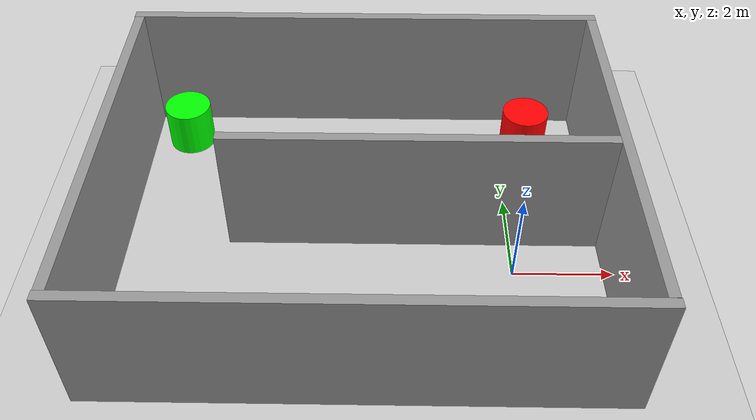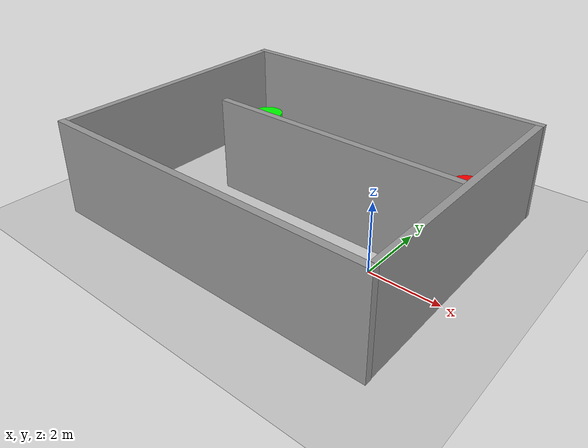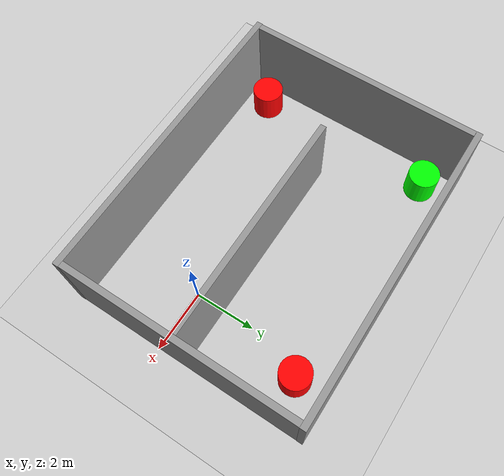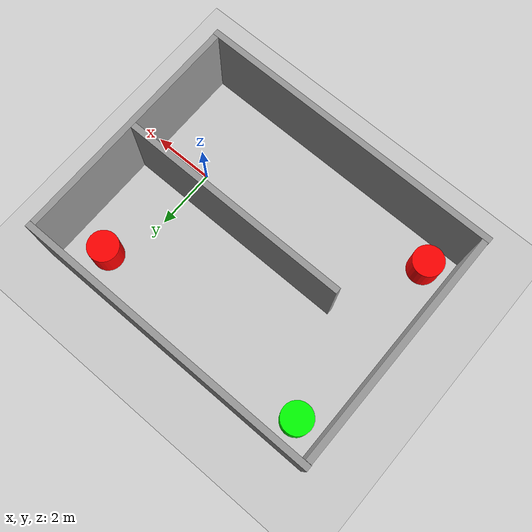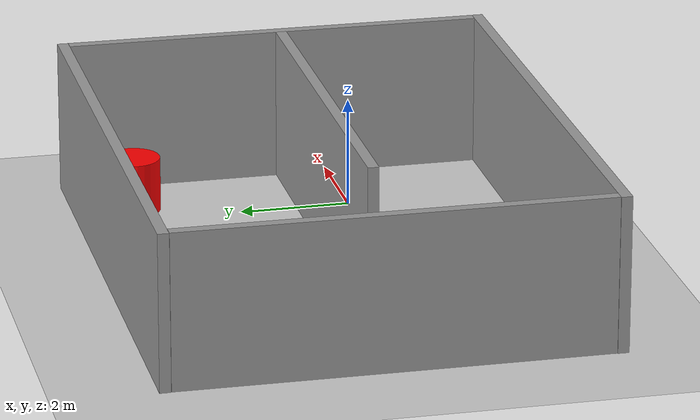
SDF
<sdf version="1.6">
 <world name="default">
  <light name="sun" type="directional">
   <pose>0 0 10 0 -0 0</pose>
   <diffuse>0.8 0.8 0.8 1</diffuse>
   <specular>0.2 0.2 0.2 1</specular>
   <attenuation>
    <range>1000</range>
    <constant>0.9</constant>
    <linear>0.01</linear>
    <quadratic>0.001</quadratic>
   </attenuation>
   <direction>-0.5 0.1 -0.9</direction>
  </light>
  <model name="ground_plane">
   <static>1</static>
   <link name="link">
    <collision name="collision">
     <geometry><plane><normal>0 0 1</normal><size>100 100</size></plane></geometry>
     <surface><friction><ode><mu>100</mu><mu2>50</mu2></ode></friction></surface>
    </collision>
    <visual name="visual">
     <cast_shadows>0</cast_shadows>
     <geometry><plane><normal>0 0 1</normal><size>100 100</size></plane></geometry>
     <material>
      <script><uri>file://media/materials/scripts/gazebo.material</uri><name>Gazebo/Grey</name></script>
     </material>
    </visual>
    <velocity_decay><linear>0</linear><angular>0</angular></velocity_decay>
   </link>
  </model>
  <physics name="default_physics" default="0" type="ode">
   <max_step_size>0.001</max_step_size>
   <real_time_factor>1</real_time_factor>
   <real_time_update_rate>1000</real_time_update_rate>
  </physics>
  <scene><ambient>0.4 0.4 0.4 1</ambient><background>0.7 0.7 0.7 1</background><shadows>1</shadows></scene>
  <spherical_coordinates>
   <surface_model>EARTH_WGS84</surface_model>
   <latitude_deg>0</latitude_deg>
   <longitude_deg>0</longitude_deg>
   <elevation>0</elevation>
   <heading_deg>0</heading_deg>
  </spherical_coordinates>
  <model name="grey_wall_5">
   <static>1</static>
   <link name="link">
    <pose>0 0 1.4 0 -0 0</pose>
    <collision name="collision"><geometry><box><size>7.5 0.2 2.8</size></box></geometry></collision>
    <visual name="visual">
     <cast_shadows>0</cast_shadows>
     <geometry><box><size>7.5 0.2 2.8</size></box></geometry>
     <material>
      <script>
       <uri>model://grey_wall/materials/scripts</uri>
       <uri>model://grey_wall/materials/textures</uri>
       <name>vrc/grey_wall</name>
      </script>
     </material>
    </visual>
    <velocity_decay><linear>0</linear><angular>0</angular></velocity_decay>
   </link>
   <pose>-1.96434 0.864638 0.00615 0 -0 0</pose>
  </model>
  <gravity>0 0 -9.8</gravity>
  <magnetic_field>6e-06 2.3e-05 -4.2e-05</magnetic_field>
  <atmosphere type="adiabatic"/>
  <audio><device>default</device></audio>
  <model name="unit_cylinder">
   <pose>-7.04937 -2.01223 0.499992 -3e-06 -4e-06 -0</pose>
   <link name="link">
    <inertial>
     <mass>1</mass>
     <inertia><ixx>0.145833</ixx><ixy>0</ixy><ixz>0</ixz><iyy>0.145833</iyy><iyz>0</iyz><izz>0.125</izz></inertia>
    </inertial>
    <collision name="collision">
     <geometry><cylinder><radius>0.5</radius><length>1</length></cylinder></geometry>
    </collision>
    <visual name="visual">
     <geometry><cylinder><radius>0.5</radius><length>1</length></cylinder></geometry>
     <material>
      <ambient>1 0 0 1</ambient>
      <diffuse>1 0 0 1</diffuse>
      <specular>0.2 0.2 0.2 0.2</specular>
      <emissive>0 0 0 1</emissive>
     </material>
    </visual>
   </link>
  </model>
  <model name="unit_cylinder_clone">
   <pose>-6.98337 3.99898 0.499993 -3e-06 -4e-06 -0</pose>
   <link name="link">
    <inertial>
     <mass>1</mass>
     <inertia><ixx>0.145833</ixx><ixy>0</ixy><ixz>0</ixz><iyy>0.145833</iyy><iyz>0</iyz><izz>0.125</izz></inertia>
    </inertial>
    <collision name="collision">
     <geometry><cylinder><radius>0.5</radius><length>1</length></cylinder></geometry>
    </collision>
    <visual name="visual">
     <geometry><cylinder><radius>0.5</radius><length>1</length></cylinder></geometry>
     <material>
      <ambient>0 1 0 1</ambient>
      <diffuse>0 1 0 1</diffuse>
      <specular>0.2 0.2 0.2 0.2</specular>
      <emissive>0 0 0 1</emissive>
     </material>
    </visual>
   </link>
  </model>
  <model name="unit_cylinder_clone_0">
   <pose>0.592604 3.88284 0.499997 3e-06 4e-06 -0</pose>
   <link name="link">
    <inertial>
     <mass>1</mass>
     <inertia><ixx>0.145833</ixx><ixy>0</ixy><ixz>0</ixz><iyy>0.145833</iyy><iyz>0</iyz><izz>0.125</izz></inertia>
    </inertial>
    <collision name="collision">
     <geometry><cylinder><radius>0.5</radius><length>1</length></cylinder></geometry>
    </collision>
    <visual name="visual">
     <geometry><cylinder><radius>0.5</radius><length>1</length></cylinder></geometry>
     <material>
      <ambient>1 0 0 1</ambient>
      <diffuse>1 0 0 1</diffuse>
      <specular>0.2 0.2 0.2 0.2</specular>
      <emissive>0 0 0 1</emissive>
     </material>
    </visual>
   </link>
  </model>
  <model name="grey_wall_0">
   <link name="link">
    <pose>0 0 1.4 0 -0 0</pose>
    <velocity_decay><linear>0</linear><angular>0</angular></velocity_decay>
    <inertial>
     <mass>1</mass>
     <inertia><ixx>1</ixx><ixy>0</ixy><ixz>0</ixz><iyy>1</iyy><iyz>0</iyz><izz>1</izz></inertia>
    </inertial>
    <visual name="visual">
     <cast_shadows>0</cast_shadows>
     <geometry><box><size>10 0.2 2.8</size></box></geometry>
     <material>
      <script>
       <uri>model://grey_wall/materials/scripts</uri>
       <uri>model://grey_wall/materials/textures</uri>
       <name>vrc/grey_wall</name>
      </script>
      <shader type="vertex"><normal_map>__default__</normal_map></shader>
      <ambient>1 1 1 1</ambient>
      <diffuse>1 1 1 1</diffuse>
      <specular>0 0 0 1</specular>
      <emissive>0 0 0 1</emissive>
     </material>
    </visual>
    <collision name="collision">
     <geometry><box><size>7.5 0.2 2.8</size></box></geometry>
     <surface>
      <friction>
       <ode><mu>1</mu><mu2>1</mu2><fdir1>0 0 0</fdir1><slip1>0</slip1><slip2>0</slip2></ode>
       <torsional>
        <coefficient>1</coefficient>
        <patch_radius>0</patch_radius>
        <surface_radius>0</surface_radius>
        <use_patch_radius>1</use_patch_radius>
        <ode><slip>0</slip></ode>
       </torsional>
      </friction>
      <bounce><restitution_coefficient>0</restitution_coefficient><threshold>1e+06</threshold></bounce>
      <contact>
       <collide_without_contact>0</collide_without_contact>
       <collide_without_contact_bitmask>1</collide_without_contact_bitmask>
       <collide_bitmask>1</collide_bitmask>
       <ode>
        <soft_cfm>0</soft_cfm>
        <soft_erp>0.2</soft_erp>
        <kp>1e+13</kp>
        <kd>1</kd>
        <max_vel>0.01</max_vel>
        <min_depth>0</min_depth>
       </ode>
       <bullet>
        <split_impulse>1</split_impulse>
        <split_impulse_penetration_threshold>-0.01</split_impulse_penetration_threshold>
        <soft_cfm>0</soft_cfm>
        <soft_erp>0.2</soft_erp>
        <kp>1e+13</kp>
        <kd>1</kd>
       </bullet>
      </contact>
     </surface>
    </collision>
   </link>
   <static>1</static>
   <pose>-3.00451 -2.91986 0 0 -0 0</pose>
  </model>
  <model name="grey_wall">
   <link name="link">
    <pose>0 0 1.4 0 -0 0</pose>
    <velocity_decay><linear>0</linear><angular>0</angular></velocity_decay>
    <inertial>
     <mass>1</mass>
     <inertia><ixx>1</ixx><ixy>0</ixy><ixz>0</ixz><iyy>1</iyy><iyz>0</iyz><izz>1</izz></inertia>
    </inertial>
    <visual name="visual">
     <cast_shadows>0</cast_shadows>
     <geometry><box><size>10 0.2 2.8</size></box></geometry>
     <material>
      <script>
       <uri>model://grey_wall/materials/scripts</uri>
       <uri>model://grey_wall/materials/textures</uri>
       <name>vrc/grey_wall</name>
      </script>
      <shader type="vertex"><normal_map>__default__</normal_map></shader>
      <ambient>1 1 1 1</ambient>
      <diffuse>1 1 1 1</diffuse>
      <specular>0 0 0 1</specular>
      <emissive>0 0 0 1</emissive>
     </material>
    </visual>
    <collision name="collision">
     <geometry><box><size>7.5 0.2 2.8</size></box></geometry>
     <surface>
      <friction>
       <ode><mu>1</mu><mu2>1</mu2><fdir1>0 0 0</fdir1><slip1>0</slip1><slip2>0</slip2></ode>
       <torsional>
        <coefficient>1</coefficient>
        <patch_radius>0</patch_radius>
        <surface_radius>0</surface_radius>
        <use_patch_radius>1</use_patch_radius>
        <ode><slip>0</slip></ode>
       </torsional>
      </friction>
      <bounce><restitution_coefficient>0</restitution_coefficient><threshold>1e+06</threshold></bounce>
      <contact>
       <collide_without_contact>0</collide_without_contact>
       <collide_without_contact_bitmask>1</collide_without_contact_bitmask>
       <collide_bitmask>1</collide_bitmask>
       <ode>
        <soft_cfm>0</soft_cfm>
        <soft_erp>0.2</soft_erp>
        <kp>1e+13</kp>
        <kd>1</kd>
        <max_vel>0.01</max_vel>
        <min_depth>0</min_depth>
       </ode>
       <bullet>
        <split_impulse>1</split_impulse>
        <split_impulse_penetration_threshold>-0.01</split_impulse_penetration_threshold>
        <soft_cfm>0</soft_cfm>
        <soft_erp>0.2</soft_erp>
        <kp>1e+13</kp>
        <kd>1</kd>
       </bullet>
      </contact>
     </surface>
    </collision>
   </link>
   <static>1</static>
   <pose>-3.00879 4.9043 0 0 -0 0</pose>
  </model>
  <model name="grey_wall_1">
   <link name="link">
    <pose>-0.041944 -0.00228 1.4 0 -0 0</pose>
    <velocity_decay><linear>0</linear><angular>0</angular></velocity_decay>
    <inertial>
     <mass>1</mass>
     <inertia><ixx>1</ixx><ixy>0</ixy><ixz>0</ixz><iyy>1</iyy><iyz>0</iyz><izz>1</izz></inertia>
    </inertial>
    <visual name="visual">
     <cast_shadows>0</cast_shadows>
     <geometry><box><size>7.625 0.2 2.8</size></box></geometry>
     <material>
      <script>
       <uri>model://grey_wall/materials/scripts</uri>
       <uri>model://grey_wall/materials/textures</uri>
       <name>vrc/grey_wall</name>
      </script>
      <shader type="vertex"><normal_map>__default__</normal_map></shader>
      <ambient>1 1 1 1</ambient>
      <diffuse>1 1 1 1</diffuse>
      <specular>0 0 0 1</specular>
      <emissive>0 0 0 1</emissive>
     </material>
    </visual>
    <collision name="collision">
     <geometry><box><size>7.5 0.2 2.8</size></box></geometry>
     <surface>
      <friction>
       <ode><mu>1</mu><mu2>1</mu2><fdir1>0 0 0</fdir1><slip1>0</slip1><slip2>0</slip2></ode>
       <torsional>
        <coefficient>1</coefficient>
        <patch_radius>0</patch_radius>
        <surface_radius>0</surface_radius>
        <use_patch_radius>1</use_patch_radius>
        <ode><slip>0</slip></ode>
       </torsional>
      </friction>
      <bounce><restitution_coefficient>0</restitution_coefficient><threshold>1e+06</threshold></bounce>
      <contact>
       <collide_without_contact>0</collide_without_contact>
       <collide_without_contact_bitmask>1</collide_without_contact_bitmask>
       <collide_bitmask>1</collide_bitmask>
       <ode>
        <soft_cfm>0</soft_cfm>
        <soft_erp>0.2</soft_erp>
        <kp>1e+13</kp>
        <kd>1</kd>
        <max_vel>0.01</max_vel>
        <min_depth>0</min_depth>
       </ode>
       <bullet>
        <split_impulse>1</split_impulse>
        <split_impulse_penetration_threshold>-0.01</split_impulse_penetration_threshold>
        <soft_cfm>0</soft_cfm>
        <soft_erp>0.2</soft_erp>
        <kp>1e+13</kp>
        <kd>1</kd>
       </bullet>
      </contact>
     </surface>
    </collision>
   </link>
   <static>1</static>
   <pose>-7.89116 0.945439 0 0 0 -1.57019</pose>
  </model>
  <model name="grey_wall_3">
   <link name="link">
    <pose>0 0 1.4 0 -0 0</pose>
    <velocity_decay><linear>0</linear><angular>0</angular></velocity_decay>
    <inertial>
     <mass>1</mass>
     <inertia><ixx>1</ixx><ixy>0</ixy><ixz>0</ixz><iyy>1</iyy><iyz>0</iyz><izz>1</izz></inertia>
    </inertial>
    <visual name="visual">
     <cast_shadows>0</cast_shadows>
     <geometry><box><size>7.625 0.2 2.8</size></box></geometry>
     <material>
      <script>
       <uri>model://grey_wall/materials/scripts</uri>
       <uri>model://grey_wall/materials/textures</uri>
       <name>vrc/grey_wall</name>
      </script>
      <shader type="vertex"><normal_map>__default__</normal_map></shader>
      <ambient>1 1 1 1</ambient>
      <diffuse>1 1 1 1</diffuse>
      <specular>0 0 0 1</specular>
      <emissive>0 0 0 1</emissive>
     </material>
    </visual>
    <collision name="collision">
     <geometry><box><size>7.5 0.2 2.8</size></box></geometry>
     <surface>
      <friction>
       <ode><mu>1</mu><mu2>1</mu2><fdir1>0 0 0</fdir1><slip1>0</slip1><slip2>0</slip2></ode>
       <torsional>
        <coefficient>1</coefficient>
        <patch_radius>0</patch_radius>
        <surface_radius>0</surface_radius>
        <use_patch_radius>1</use_patch_radius>
        <ode><slip>0</slip></ode>
       </torsional>
      </friction>
      <bounce><restitution_coefficient>0</restitution_coefficient><threshold>1e+06</threshold></bounce>
      <contact>
       <collide_without_contact>0</collide_without_contact>
       <collide_without_contact_bitmask>1</collide_without_contact_bitmask>
       <collide_bitmask>1</collide_bitmask>
       <ode>
        <soft_cfm>0</soft_cfm>
        <soft_erp>0.2</soft_erp>
        <kp>1e+13</kp>
        <kd>1</kd>
        <max_vel>0.01</max_vel>
        <min_depth>0</min_depth>
       </ode>
       <bullet>
        <split_impulse>1</split_impulse>
        <split_impulse_penetration_threshold>-0.01</split_impulse_penetration_threshold>
        <soft_cfm>0</soft_cfm>
        <soft_erp>0.2</soft_erp>
        <kp>1e+13</kp>
        <kd>1</kd>
       </bullet>
      </contact>
     </surface>
    </collision>
   </link>
   <static>1</static>
   <pose>1.88567 0.991107 0.00212 0 0 -1.57102</pose>
  </model>
 </world>
</sdf>
